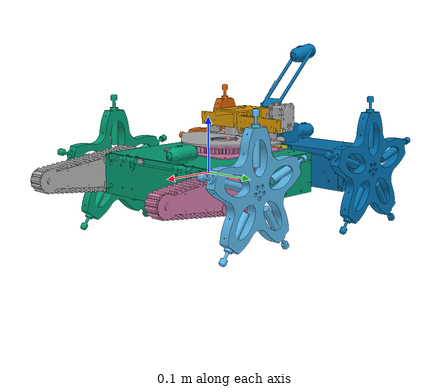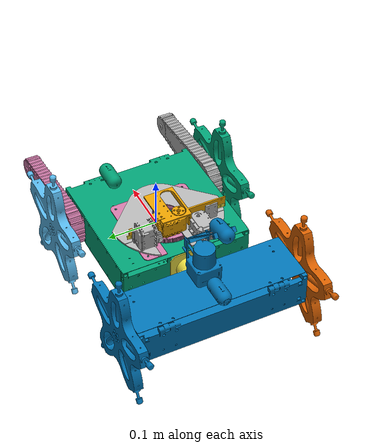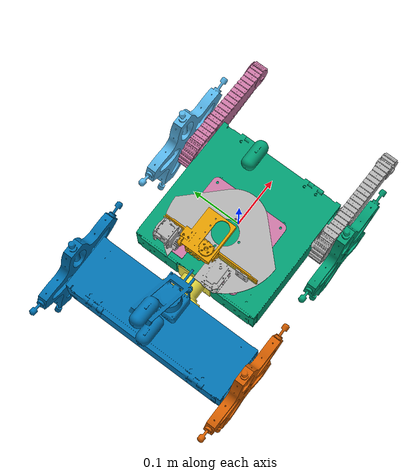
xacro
<?xml version="1.0"?>
<robot name="newrobo" xmlns:xacro="http://www.ros.org/wiki/xacro">
    <xacro:include filename="$(find shinobi_newrobo_display)/robot/define.xacro"/>
    <xacro:include filename="$(find shinobi_newrobo_display)/robot/config.xacro"/>
    <xacro:include filename="$(find shinobi_newrobo_display)/robot/flipper_macro.xacro"/>
    <xacro:include filename="$(find shinobi_newrobo_display)/robot/starWheel_macro.xacro"/>
    <xacro:include filename="$(find shinobi_newrobo_display)/robot/armjack_left_macro.xacro"/>
    <xacro:include filename="$(find shinobi_newrobo_display)/robot/armjack_right_macro.xacro"/>

    <!-- BODY -->
    <link name="virtualLink_world">
        <origin rpy="0 0 0" xyz="0 0 0"/>
    </link>

    <joint name="joint_body_front_pitch" type="continuous">
        <axis xyz="0 1 0"/>
        <origin rpy="0 0 0"
                xyz="0 0 0"/>
        <parent link="virtualLink_world"/>
        <child link="virtualLink_body_front"/>
    </joint>

    <link name="virtualLink_body_front">
        <origin rpy="0 0 0" xyz="0 0 0"/>
    </link>

    <joint name="joint_body_front_roll" type="continuous">
        <axis xyz="1 0 0"/>
        <origin rpy="0 0 0"
                xyz="0 0 0"/>
        <parent link="virtualLink_body_front"/>
        <child link="body_front"/>
    </joint>

    <link name="body_front">
        <visual>
            <origin rpy="0 0 0"
                    xyz="0 0 0"/>
            <geometry>
                <mesh filename="${robotPackagePath}/${modelDataResourseFolder}/body_front.stl"/>
            </geometry>
        </visual>
    </link>

    <joint name="joint_body_pitch" type="revolute">
        <axis xyz="0 1 0"/>
        <limit lower="${DEG2RAD*bodyPitchAngle_min}" effort="1000.0"
               upper="${DEG2RAD*bodyPitchAngle_max}" velocity="0.5"/>
        <origin rpy="0 0 0"
                xyz="${-bodyFront_depth/2.0} 0 ${-bodyFront_height/2.0}"/>
        <parent link="body_front"/>
        <child link="body_link"/>
    </joint>

    <link name="body_link">
        <visual>
            <origin rpy="0 0 0"
                    xyz="${-bodyLink_length/2.0} 0 ${bodyFront_height/2.0}"/>
            <geometry>
                <mesh filename="${robotPackagePath}/${modelDataResourseFolder}/body_link.stl"/>
            </geometry>
        </visual>
    </link>

    <joint name="joint_body_roll" type="continuous">
        <axis xyz="1 0 0"/>
        <origin rpy="0 0 0"
                xyz="0 0 0"/>
        <parent link="body_link"/>
        <child link="body_back"/>
    </joint>

    <link name="body_back">
        <visual>
            <origin rpy="0 0 0"
                    xyz="${-bodyLink_length - bodyBack_depth/2.0} 0 ${bodyBack_height/2.0}"/>
            <geometry>
                <mesh filename="${robotPackagePath}/${modelDataResourseFolder}/body_back.stl"/>
            </geometry>
        </visual>
    </link>

    <!-- FLIPPERS -->
    <xacro:combine_lr_flippers
            left_joint_name="joint_flipper_left" right_joint_name="joint_flipper_right"
            parent="body_front" flipper_tread="${flipper_tread}" suffix="front">
        <origin rpy="0 0 0" xyz="${flipperAxis_fromBodyCenter} 0 0"/>
    </xacro:combine_lr_flippers>

    <!-- WHEELS -->
    <xacro:combine_lr_wheels
            joint_name="joint_starwheel_front" parent="body_front"
            suffix="front" wheel_tread="${frontwheel_tread}">
        <origin rpy="0 0 0"
                xyz="${frontwheelAxis_fromBodyCenter} 0 0"/>
    </xacro:combine_lr_wheels>

    <xacro:combine_lr_wheels
            joint_name="joint_starwheel_back" parent="body_back"
            suffix="back" wheel_tread="${backwheel_tread}">
        <origin rpy="0 0 0"
                xyz="${backwheelAxis_fromBodyCenter} 0 ${bodyBack_height/2.0}"/>
    </xacro:combine_lr_wheels>

    <!-- ARM BASE -->
    <joint name="virtualjoint_arm_base" type="fixed">
        <origin rpy="0 0 0" xyz="${-armBase_fromBodyCenter_X} 0 ${bodyFront_height/2.0}"/>
        <parent link="body_front"/>
        <child link="arm_base"/>
    </joint>

    <link name="arm_base">
        <visual>
            <origin rpy="0 0 0" xyz="0 0 0"/>
            <geometry>
                <mesh filename="${robotPackagePath}/${modelDataResourseFolder}/arm_base.stl"/>
            </geometry>
        </visual>
    </link>

    <joint name="joint_arm_yaw" type="revolute">
        <axis xyz="0 0 1"/>
        <limit lower="${DEG2RAD*armYawAngle_min}" effort="1000.0"
               upper="${DEG2RAD*armYawAngle_max}" velocity="0.5"/>
        <origin rpy="0 0 0"
                xyz="0 0 ${armYawStage_fromBodyTop}"/>
        <parent link="arm_base"/>
        <child link="arm_yaw"/>
    </joint>

    <link name="arm_yaw">
        <visual>
            <origin rpy="0 0 0"
                    xyz="0 0 0"/>
            <geometry>
                <mesh filename="${robotPackagePath}/${modelDataResourseFolder}/arm_yaw.stl"/>
            </geometry>
        </visual>
    </link>

    <joint name="joint_arm_pitch" type="revolute">
        <axis xyz="0 1 0"/>
        <limit lower="${DEG2RAD*armPitchAngle_min}" effort="1000.0"
               upper="${DEG2RAD*armPitchAngle_max}" velocity="0.5"/>
        <origin rpy="0 0 0"
                xyz="${-armPitchAxis_fromYawAxis} 0 ${armPitchAxis_fromYawStage}"/>
        <parent link="arm_yaw"/>
        <child link="arm_pitch"/>
    </joint>

    <link name="arm_pitch">
        <visual>
            <origin rpy="0 0 0"
                    xyz="${-armLinearAxis_fromPitchAxis} 0	${-armPitchAxis_fromYawStage + armLinearAxis_fromYawStage}"/>
            <geometry>
                <mesh filename="${robotPackagePath}/${modelDataResourseFolder}/arm_pitch.stl"/>
            </geometry>
        </visual>
    </link>

    <!-- ARM BELLOWS -->
    <joint name="virtualjoint_arm_bellows_base" type="fixed">
        <origin rpy="0 0 0" xyz="0 0 ${-armLinearBase_ArmLinearAxis}"/>
        <parent link="arm_pitch"/>
        <child link="arm_linear_frame_base"/>
    </joint>

    <link name="arm_linear_frame_base">
        <origin rpy="0 0 0" xyz="0 0 0"/>
    </link>

    <!-- right -->
    <joint name="virtualJoint_armLinear_base_right" type="prismatic">
        <axis xyz="0 1 0"/>
        <limit lower="${DEG2RAD*armYawAngle_min}" effort="1000.0"
               upper="${DEG2RAD*armYawAngle_max}" velocity="0.5"/>
        <origin rpy="0 0 0" xyz="0 ${-armLinear_frame_length/2.0} 0"/>
        <parent link="arm_linear_frame_base"/>
        <child link="virtualLink_armLinear_base_right"/>
    </joint>

    <link name="virtualLink_armLinear_base_right">
        <origin rpy="0 0 0" xyz="0 0 0"/>
    </link>

    <xacro:armjack_right parent="virtualLink_armLinear_base_right" suffix="1"/>
    <xacro:armjack_right parent="${arm_linear_frame_right_B}_1" suffix="2"/>
    <xacro:armjack_right parent="${arm_linear_frame_right_B}_2" suffix="3"/>

    <!-- left -->
    <joint name="virtualJoint_armLinear_base_left" type="prismatic">
        <axis xyz="0 1 0"/>
        <limit lower="${DEG2RAD*armYawAngle_min}" effort="1000.0"
               upper="${DEG2RAD*armYawAngle_max}" velocity="0.5"/>
        <origin rpy="0 0 0" xyz="0 ${armLinear_frame_length/2.0} 0"/>
        <parent link="arm_linear_frame_base"/>
        <child link="virtualLink_armLinear_base_left"/>
    </joint>

    <link name="virtualLink_armLinear_base_left">
        <origin rpy="0 0 0" xyz="0 0 0"/>
    </link>

    <xacro:armjack_left parent="virtualLink_armLinear_base_left" suffix="1"/>
    <xacro:armjack_left parent="${arm_linear_frame_left_B}_1" suffix="2"/>
    <xacro:armjack_left parent="${arm_linear_frame_left_B}_2" suffix="3"/>

</robot>

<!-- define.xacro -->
<robot>

	<property name="PI" 		value= "3.141592653" />
	<property name="DEG2RAD" 	value= "0.017453293" />
	<property name="RAD2DEG" 	value="57.295779513" />

</robot>

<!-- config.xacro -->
<robot>

	<property name="robotPackagePath" value="package://shinobi_newrobo_display/robot"/>
	<property name="modelDataResourseFolder" value="newRobotStls"/>

	<property name="bodyFront_depth" 	value="0.262" />
  <property name="bodyFront_height" value="0.072" />
  <property name="bodyFront_width" 	value="0.262" />

	<property name="bodyPitchAngle_max"	value=  "0" />
	<property name="bodyPitchAngle_min"	value="-90" />

	<property name="bodyLink_length" value="0.038" />

  <property name="bodyBack_depth" 	value="0.112" />
  <property name="bodyBack_height" 	value="0.072" />
  <property name="bodyBack_width" 	value="0.340" />

  <property name="starWheel_width" 	value="0.018" />
  <property name="starWheel_radius" value="0.134" />
  <property name="starWheelAxis_radius" value="0.134" />

	<property name="frontwheelAxis_fromBodyCenter" value="0.070" />
  <property name="backwheelAxis_fromBodyCenter" value="-0.100" />
	<property name="frontwheel_tread" value="0.372"/> <!-- from outside to outside -->
  <property name="backwheel_tread" value="0.386"/> <!-- from outside to outside -->

  <property name="flipper_width" 		value="0.025" />
  <property name="flipper_length" 	value="0.178" />
  <property name="flipper_tread" 	value="0.320" /> <!-- from outside to outside -->

  <property name="flipperBigPulley_radius" value="0.032" />
  <property name="flipperAngle_max" value= "90" />
  <property name="flipperAngle_min" value="-90" />
  <property name="flipperAxis_fromBodyCenter" value="0.070" />
  <property name="flipperOffset_fromBodySide" value="0.010" />

	<property name="armYawAngle_max"	value= "90" />
	<property name="armYawAngle_min"	value="-90" />
	<property name="armPitchAngle_max"	value= "90" />
	<property name="armPitchAngle_min"	value="-90" />

  <property name="armBase_fromBodyCenter_X" value="0.040" />
  <property name="armYawStage_fromBodyTop" value="0.020" />
  <property name="armPitchAxis_fromYawAxis" value="0.045" />
  <property name="armPitchAxis_fromYawStage" value="0.045" />
  <property name="armLinearAxis_fromPitchAxis" value="0.010" />
  <property name="armLinearAxis_fromYawStage" value="0.055" />

	<property name="armLinearBase_ArmLinearAxis" value="0.025" />

  <property name="armLinear_frame_length" value="0.200" />

  <property name="arm_linear_frame_left_A" value="arm_linear_frame_left_A" />
  <property name="arm_linear_frame_left_B" value="arm_linear_frame_left_B" />
  <property name="joint_armLinear_left_A" value="joint_armLinear_left_A" />
  <property name="joint_armLinear_left_B" value="joint_armLinear_left_B" />
  <property name="joint_armLinear_left_C" value="joint_armLinear_left_C" />

  <property name="arm_linear_frame_right_A" value="arm_linear_frame_right_A" />
  <property name="arm_linear_frame_right_B" value="arm_linear_frame_right_B" />
  <property name="joint_armLinear_right_A" value="joint_armLinear_right_A" />
  <property name="joint_armLinear_right_B" value="joint_armLinear_right_B" />
  <property name="joint_armLinear_right_C" value="joint_armLinear_right_C" />

</robot>

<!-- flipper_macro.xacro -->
<robot xmlns:xacro="http://www.ros.org/wiki/xacro">
	<xacro:include filename="$(find shinobi_newrobo_display)/robot/config.xacro" />

	<xacro:macro 	name="combine_lr_flippers"
								params="left_joint_name right_joint_name parent flipper_tread suffix *origin">

	<!-- Axis -->
		<joint name="fixedJoint_flipperAxis_${suffix}" type="fixed">
			<insert_block name="origin" />
  	  <parent link="${parent}" />
  	  <child link="virtualLink_flipperAxis_${suffix}"/>
  	</joint>

		<link name="virtualLink_flipperAxis_${suffix}" />

	<!-- left -->
		<joint name="${left_joint_name}" type="revolute">
  	  <axis xyz="0 1 0"/>
			<origin rpy="0 0 0"
							xyz="0 ${flipper_tread/2.0} 0" />
    	<limit 	lower="${DEG2RAD*flipperAngle_min}" effort="1000.0"
							upper="${DEG2RAD*flipperAngle_max}" velocity="0.5"/>
  	  <parent link="virtualLink_flipperAxis_${suffix}"/>
  	  <child link="flippper_left_${suffix}"/>
  	</joint>

		<link name="flippper_left_${suffix}">
			<visual>
				<origin rpy="0 0 0" xyz="0 0 0"/>
				<geometry>
					<mesh filename="${robotPackagePath}/${modelDataResourseFolder}/flipper_left.stl"/>
				</geometry>
			</visual>
		</link>

	<!-- right -->
		<joint name="${right_joint_name}" type="revolute">
  	  <axis xyz="0 1 0"/>
			<origin rpy="0 0 0"
							xyz="0 ${-flipper_tread/2.0} 0" />
    	<limit 	lower="${DEG2RAD*flipperAngle_min}" effort="1000.0"
							upper="${DEG2RAD*flipperAngle_max}" velocity="0.5"/>
  	  <parent link="virtualLink_flipperAxis_${suffix}"/>
  	  <child link="flipper_right_${suffix}"/>
  	</joint>

		<link name="flipper_right_${suffix}">
			<visual>
				<origin rpy="0 0 0" xyz="0 0 0"/>
				<geometry>
					<mesh filename="${robotPackagePath}/${modelDataResourseFolder}/flipper_right.stl"/>
				</geometry>
			</visual>
		</link>

	</xacro:macro>
</robot>

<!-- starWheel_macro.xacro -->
<robot xmlns:xacro="http://www.ros.org/wiki/xacro">
	<xacro:include filename="$(find shinobi_newrobo_display)/robot/config.xacro" />

	<xacro:macro 	name="combine_lr_wheels"
								params="joint_name parent suffix wheel_tread *origin">

	<!-- Axis -->
		<joint name="${joint_name}" type="continuous">
  	  <axis xyz="0 1 0"/>
			<insert_block name="origin" />
  	  <parent link="${parent}"/>
  	  <child link="virtual_starWheelAxisLink_${suffix}"/>
  	</joint>

		<link name="virtual_starWheelAxisLink_${suffix}" />

	<!-- left -->
		<joint name="fixedJoint_left_${suffix}" type="fixed">
			<parent link="virtual_starWheelAxisLink_${suffix}"/>
  	  <child  link="starWheel_left_${suffix}"/>
  	  <origin xyz="0 ${wheel_tread/2.0} 0"/>
		</joint>

		<link name="starWheel_left_${suffix}">
			<visual>
				<origin rpy="0 0 0"
								xyz="0 0 0"/>
				<geometry>
					<mesh filename="${robotPackagePath}/${modelDataResourseFolder}/wheel_left.stl"/>
				</geometry>
			</visual>
		</link>

	<!-- right -->
		<joint name="fixedJoint_right_${suffix}" type="fixed">
			<parent link="virtual_starWheelAxisLink_${suffix}"/>
  	  <child  link="starWheel_right_${suffix}"/>
  	  <origin xyz="0 ${-wheel_tread/2.0} 0"/>
		</joint>

		<link name="starWheel_right_${suffix}">
			<visual>
				<origin rpy="0 0 0"
								xyz="0 0 0"/>
				<geometry>
					<mesh filename="${robotPackagePath}/${modelDataResourseFolder}/wheel_right.stl"/>
				</geometry>
			</visual>
		</link>

	</xacro:macro>
</robot>

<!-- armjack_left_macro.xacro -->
<robot xmlns:xacro="http://www.ros.org/wiki/xacro">
	<xacro:include filename="$(find shinobi_newrobo_display)/robot/config.xacro" />

	<xacro:macro 	name="armjack_left"
								params="parent suffix">

  <joint name="${joint_armLinear_left_A}_${suffix}" type="revolute">
    <axis xyz="0 0 1"/>
    <limit 	lower="${DEG2RAD*armYawAngle_min}" effort="1000.0"
						upper="${DEG2RAD*armYawAngle_max}" velocity="0.5"/>
    <origin rpy="0 0 0"
						xyz="0 ${-armLinear_frame_length} 0"/>
    <parent link="${parent}"/>
    <child link="${arm_linear_frame_left_A}_${suffix}"/>
  </joint>

	<link name="${arm_linear_frame_left_A}_${suffix}">
		<visual>
			<origin rpy="0 0 0"
							xyz="0 ${armLinear_frame_length/2.0} 0"/>
			<geometry>
				<mesh filename="${robotPackagePath}/${modelDataResourseFolder}/arm_linear_frame.stl"/>
			</geometry>
		</visual>
	</link>

  <joint name="${joint_armLinear_left_B}_${suffix}" type="revolute">
    <axis xyz="0 0 1"/>
    <limit 	lower="${DEG2RAD*armYawAngle_min}" effort="1000.0"
						upper="${DEG2RAD*armYawAngle_max}" velocity="0.5"/>
    <origin rpy="0 0 0"
						xyz="0 ${armLinear_frame_length} 0"/>
    <parent link="${arm_linear_frame_left_A}_${suffix}"/>
    <child link="${arm_linear_frame_left_B}_${suffix}"/>
  </joint>

	<link name="${arm_linear_frame_left_B}_${suffix}">
		<visual>
			<origin rpy="0 0 0"
							xyz="0 ${-armLinear_frame_length/2.0} 0"/>
			<geometry>
				<mesh filename="${robotPackagePath}/${modelDataResourseFolder}/arm_linear_frame.stl"/>
			</geometry>
		</visual>
	</link>
	</xacro:macro>
</robot>

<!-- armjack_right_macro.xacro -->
<robot xmlns:xacro="http://www.ros.org/wiki/xacro">
	<xacro:include filename="$(find shinobi_newrobo_display)/robot/config.xacro" />

	<xacro:macro 	name="armjack_right"
								params="parent suffix">

  <joint name="${joint_armLinear_right_A}_${suffix}" type="revolute">
    <axis xyz="0 0 1"/>
    <limit 	lower="${DEG2RAD*armYawAngle_min}" effort="1000.0"
						upper="${DEG2RAD*armYawAngle_max}" velocity="0.5"/>
    <origin rpy="0 0 0"
						xyz="0 ${armLinear_frame_length} 0"/>
    <parent link="${parent}"/>
    <child link="${arm_linear_frame_right_A}_${suffix}"/>
  </joint>

	<link name="${arm_linear_frame_right_A}_${suffix}">
		<visual>
			<origin rpy="0 0 0"
							xyz="0 ${-armLinear_frame_length/2.0} 0"/>
			<geometry>
				<mesh filename="${robotPackagePath}/${modelDataResourseFolder}/arm_linear_frame.stl"/>
			</geometry>
		</visual>
	</link>

  <joint name="${joint_armLinear_right_B}_${suffix}" type="revolute">
    <axis xyz="0 0 1"/>
    <limit 	lower="${DEG2RAD*armYawAngle_min}" effort="1000.0"
						upper="${DEG2RAD*armYawAngle_max}" velocity="0.5"/>
    <origin rpy="0 0 0"
						xyz="0 ${-armLinear_frame_length} 0"/>
    <parent link="${arm_linear_frame_right_A}_${suffix}"/>
    <child link="${arm_linear_frame_right_B}_${suffix}"/>
  </joint>

	<link name="${arm_linear_frame_right_B}_${suffix}">
		<visual>
			<origin rpy="0 0 0"
							xyz="0 ${armLinear_frame_length/2.0} 0"/>
			<geometry>
				<mesh filename="${robotPackagePath}/${modelDataResourseFolder}/arm_linear_frame.stl"/>
			</geometry>
		</visual>
	</link>
	</xacro:macro>
</robot>
